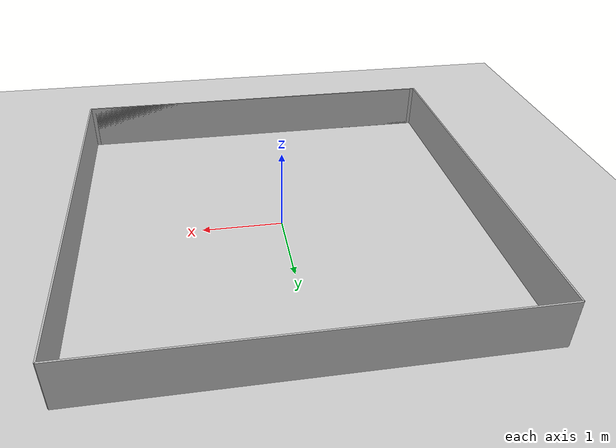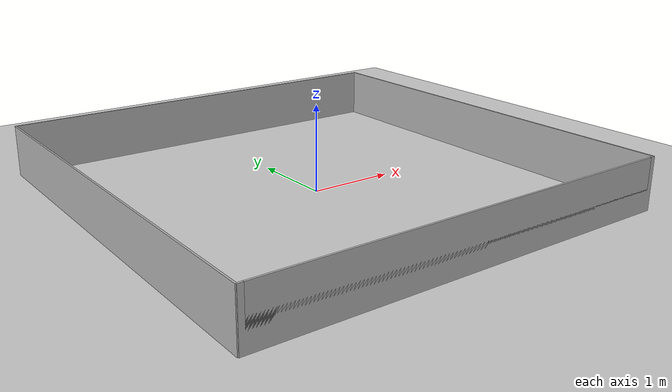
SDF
<sdf version="1.6">
 <world name="default">
  <light name="sun" type="directional">
   <pose>0 0 10 0 -0 0</pose>
   <diffuse>0.8 0.8 0.8 1</diffuse>
   <specular>0.2 0.2 0.2 1</specular>
   <attenuation>
    <range>1000</range>
    <constant>0.9</constant>
    <linear>0.01</linear>
    <quadratic>0.001</quadratic>
   </attenuation>
   <direction>-0.5 0.1 -0.9</direction>
  </light>
  <model name="ground_plane">
   <static>1</static>
   <link name="link">
    <collision name="collision">
     <geometry><plane><normal>0 0 1</normal><size>100 100</size></plane></geometry>
     <surface><friction><ode><mu>100</mu><mu2>50</mu2></ode></friction></surface>
    </collision>
    <visual name="visual">
     <cast_shadows>0</cast_shadows>
     <geometry><plane><normal>0 0 1</normal><size>100 100</size></plane></geometry>
     <material>
      <script><uri>file://media/materials/scripts/gazebo.material</uri><name>Gazebo/Grey</name></script>
     </material>
    </visual>
   </link>
  </model>
  <gravity>0 0 -9.8</gravity>
  <magnetic_field>6e-06 2.3e-05 -4.2e-05</magnetic_field>
  <atmosphere type="adiabatic"/>
  <physics name="default_physics" default="0" type="ode">
   <max_step_size>0.001</max_step_size>
   <real_time_factor>1</real_time_factor>
   <real_time_update_rate>1000</real_time_update_rate>
  </physics>
  <scene><ambient>0.4 0.4 0.4 1</ambient><background>0.7 0.7 0.7 1</background><shadows>1</shadows></scene>
  <spherical_coordinates>
   <surface_model>EARTH_WGS84</surface_model>
   <latitude_deg>0</latitude_deg>
   <longitude_deg>0</longitude_deg>
   <elevation>0</elevation>
   <heading_deg>0</heading_deg>
  </spherical_coordinates>
  <model name="border_Left_0">
   <link name="link">
    <inertial>
     <inertia><ixx>1</ixx><ixy>0</ixy><ixz>0</ixz><iyy>1</iyy><iyz>0</iyz><izz>1</izz></inertia>
     <mass>1</mass>
    </inertial>
    <visual name="visual">
     <geometry><box><size>0.02 5 0.6</size></box></geometry>
     <material><shader type="vertex"><normal_map>__default__</normal_map></shader></material>
    </visual>
    <collision name="collision">
     <geometry><box><size>0.02 3.66 0.6</size></box></geometry>
     <surface>
      <friction>
       <ode><mu>0.01</mu><mu2>0.01</mu2><fdir1>0 0 0</fdir1><slip1>0</slip1><slip2>0</slip2></ode>
       <torsional>
        <coefficient>1</coefficient>
        <patch_radius>0</patch_radius>
        <surface_radius>0</surface_radius>
        <use_patch_radius>1</use_patch_radius>
        <ode><slip>0</slip></ode>
       </torsional>
      </friction>
      <bounce><restitution_coefficient>0</restitution_coefficient><threshold>1e+06</threshold></bounce>
      <contact>
       <collide_without_contact>0</collide_without_contact>
       <collide_without_contact_bitmask>1</collide_without_contact_bitmask>
       <collide_bitmask>1</collide_bitmask>
       <ode>
        <soft_cfm>0</soft_cfm>
        <soft_erp>0.2</soft_erp>
        <kp>1e+13</kp>
        <kd>1</kd>
        <max_vel>0.01</max_vel>
        <min_depth>0</min_depth>
       </ode>
       <bullet>
        <split_impulse>1</split_impulse>
        <split_impulse_penetration_threshold>-0.01</split_impulse_penetration_threshold>
        <soft_cfm>0</soft_cfm>
        <soft_erp>0.2</soft_erp>
        <kp>1e+13</kp>
        <kd>1</kd>
       </bullet>
      </contact>
     </surface>
    </collision>
   </link>
   <static>1</static>
   <pose>-2.5 5e-06 0.3 0 6e-06 0</pose>
  </model>
  <model name="border_Right_0_0">
   <link name="link">
    <inertial>
     <inertia><ixx>1</ixx><ixy>0</ixy><ixz>0</ixz><iyy>1</iyy><iyz>0</iyz><izz>1</izz></inertia>
     <mass>1</mass>
    </inertial>
    <visual name="ModelPreview_7::link::visual_1">
     <geometry><box><size>0.02 5 0.6</size></box></geometry>
     <material><shader type="vertex"><normal_map>__default__</normal_map></shader></material>
    </visual>
    <visual name="visual">
     <geometry><box><size>0.02 5 0.6</size></box></geometry>
     <material><shader type="vertex"><normal_map>__default__</normal_map></shader></material>
    </visual>
    <visual name="ModelPreview_3::link::visual_3">
     <geometry><box><size>0.02 5 0.6</size></box></geometry>
     <material><shader type="vertex"><normal_map>__default__</normal_map></shader></material>
    </visual>
    <visual name="ModelPreview_3::link::visual_2">
     <geometry><box><size>0.02 5 0.6</size></box></geometry>
     <material><shader type="vertex"><normal_map>__default__</normal_map></shader></material>
    </visual>
    <collision name="collision">
     <geometry><box><size>0.02 3.66 0.6</size></box></geometry>
     <surface>
      <friction>
       <ode><mu>0.01</mu><mu2>0.01</mu2><fdir1>0 0 0</fdir1><slip1>0</slip1><slip2>0</slip2></ode>
       <torsional>
        <coefficient>1</coefficient>
        <patch_radius>0</patch_radius>
        <surface_radius>0</surface_radius>
        <use_patch_radius>1</use_patch_radius>
        <ode><slip>0</slip></ode>
       </torsional>
      </friction>
      <bounce><restitution_coefficient>0</restitution_coefficient><threshold>1e+06</threshold></bounce>
      <contact>
       <collide_without_contact>0</collide_without_contact>
       <collide_without_contact_bitmask>1</collide_without_contact_bitmask>
       <collide_bitmask>1</collide_bitmask>
       <ode>
        <soft_cfm>0</soft_cfm>
        <soft_erp>0.2</soft_erp>
        <kp>1e+13</kp>
        <kd>1</kd>
        <max_vel>0.01</max_vel>
        <min_depth>0</min_depth>
       </ode>
       <bullet>
        <split_impulse>1</split_impulse>
        <split_impulse_penetration_threshold>-0.01</split_impulse_penetration_threshold>
        <soft_cfm>0</soft_cfm>
        <soft_erp>0.2</soft_erp>
        <kp>1e+13</kp>
        <kd>1</kd>
       </bullet>
      </contact>
     </surface>
    </collision>
   </link>
   <static>1</static>
   <pose>2.5 -2e-06 0.3 0 -8e-06 0</pose>
  </model>
  <model name="border_Bot_0_clone">
   <link name="link">
    <inertial>
     <inertia><ixx>1</ixx><ixy>0</ixy><ixz>0</ixz><iyy>1</iyy><iyz>0</iyz><izz>1</izz></inertia>
     <mass>1</mass>
    </inertial>
    <visual name="ModelPreview_4::link::visual_1">
     <geometry><box><size>4.88 0.02 0.6</size></box></geometry>
     <material><shader type="vertex"><normal_map>__default__</normal_map></shader></material>
    </visual>
    <visual name="visual">
     <geometry><box><size>5 0.02 0.6</size></box></geometry>
     <material><shader type="vertex"><normal_map>__default__</normal_map></shader></material>
    </visual>
    <visual name="ModelPreview_4::link::visual_2">
     <geometry><box><size>5 0.02 0.6</size></box></geometry>
     <material><shader type="vertex"><normal_map>__default__</normal_map></shader></material>
    </visual>
    <collision name="collision">
     <geometry><box><size>4.88 0.02 0.6</size></box></geometry>
     <surface>
      <friction>
       <ode><mu>0.01</mu><mu2>0.01</mu2><fdir1>0 0 0</fdir1><slip1>0</slip1><slip2>0</slip2></ode>
       <torsional>
        <coefficient>1</coefficient>
        <patch_radius>0</patch_radius>
        <surface_radius>0</surface_radius>
        <use_patch_radius>1</use_patch_radius>
        <ode><slip>0</slip></ode>
       </torsional>
      </friction>
      <bounce><restitution_coefficient>0</restitution_coefficient><threshold>1e+06</threshold></bounce>
      <contact>
       <collide_without_contact>0</collide_without_contact>
       <collide_without_contact_bitmask>1</collide_without_contact_bitmask>
       <collide_bitmask>1</collide_bitmask>
       <ode>
        <soft_cfm>0</soft_cfm>
        <soft_erp>0.2</soft_erp>
        <kp>1e+13</kp>
        <kd>1</kd>
        <max_vel>0.01</max_vel>
        <min_depth>0</min_depth>
       </ode>
       <bullet>
        <split_impulse>1</split_impulse>
        <split_impulse_penetration_threshold>-0.01</split_impulse_penetration_threshold>
        <soft_cfm>0</soft_cfm>
        <soft_erp>0.2</soft_erp>
        <kp>1e+13</kp>
        <kd>1</kd>
       </bullet>
      </contact>
     </surface>
    </collision>
   </link>
   <static>1</static>
   <pose>0 -2.5 0.3 1e-05 -0 2e-06</pose>
  </model>
  <model name="border_Top_0_clone">
   <link name="link">
    <inertial>
     <inertia><ixx>1</ixx><ixy>0</ixy><ixz>0</ixz><iyy>1</iyy><iyz>0</iyz><izz>1</izz></inertia>
     <mass>1</mass>
    </inertial>
    <visual name="visual">
     <geometry><box><size>5 0.02 0.6</size></box></geometry>
     <material><shader type="vertex"><normal_map>__default__</normal_map></shader></material>
    </visual>
    <collision name="collision">
     <geometry><box><size>4.88 0.02 0.6</size></box></geometry>
     <surface>
      <friction>
       <ode><mu>0.01</mu><mu2>0.01</mu2><fdir1>0 0 0</fdir1><slip1>0</slip1><slip2>0</slip2></ode>
       <torsional>
        <coefficient>1</coefficient>
        <patch_radius>0</patch_radius>
        <surface_radius>0</surface_radius>
        <use_patch_radius>1</use_patch_radius>
        <ode><slip>0</slip></ode>
       </torsional>
      </friction>
      <bounce><restitution_coefficient>0</restitution_coefficient><threshold>1e+06</threshold></bounce>
      <contact>
       <collide_without_contact>0</collide_without_contact>
       <collide_without_contact_bitmask>1</collide_without_contact_bitmask>
       <collide_bitmask>1</collide_bitmask>
       <ode>
        <soft_cfm>0</soft_cfm>
        <soft_erp>0.2</soft_erp>
        <kp>1e+13</kp>
        <kd>1</kd>
        <max_vel>0.01</max_vel>
        <min_depth>0</min_depth>
       </ode>
       <bullet>
        <split_impulse>1</split_impulse>
        <split_impulse_penetration_threshold>-0.01</split_impulse_penetration_threshold>
        <soft_cfm>0</soft_cfm>
        <soft_erp>0.2</soft_erp>
        <kp>1e+13</kp>
        <kd>1</kd>
       </bullet>
      </contact>
     </surface>
    </collision>
   </link>
   <static>1</static>
   <pose>0 2.5 0.3 -1.4e-05 -0 -4e-06</pose>
  </model>
 </world>
</sdf>
